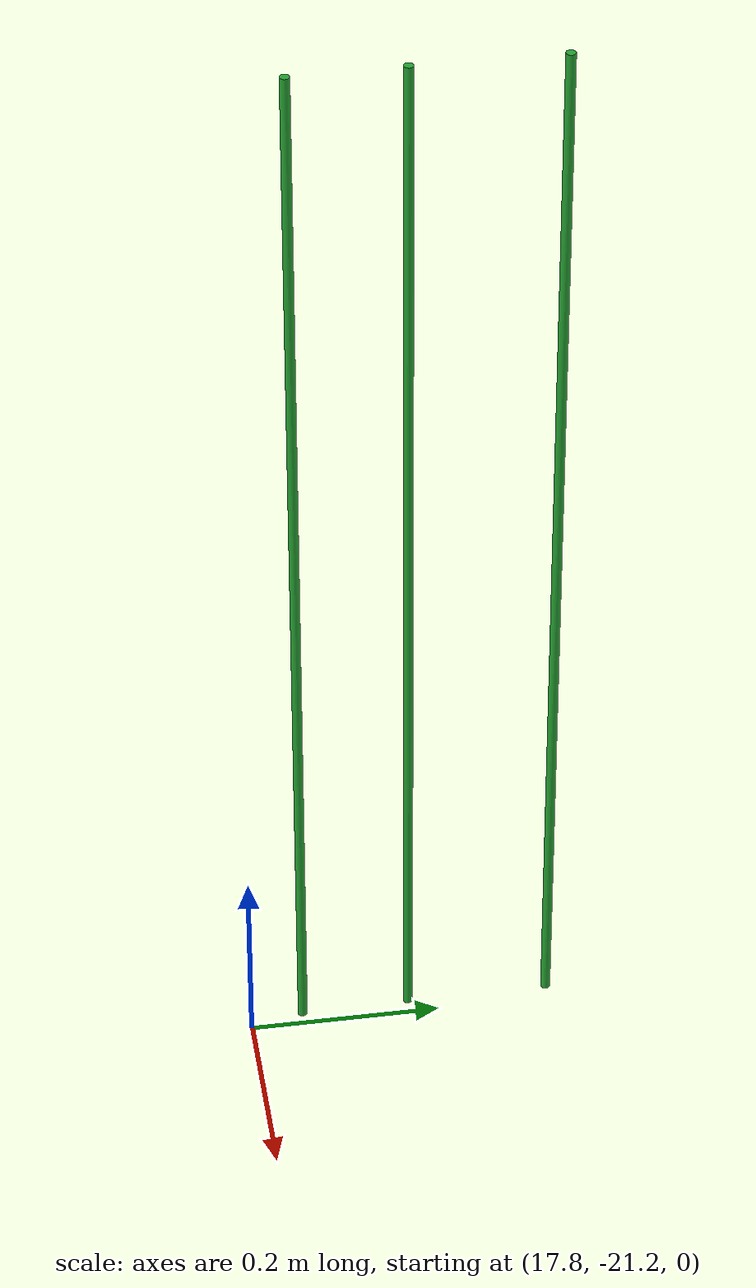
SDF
<sdf version="1.6">
 <world name="default">
  <model name="pole_27_clone_clone_205">
   <link name="link">
    <inertial>
     <mass>1</mass>
     <inertia><ixx>1</ixx><ixy>0</ixy><ixz>0</ixz><iyy>1</iyy><iyz>0</iyz><izz>1</izz></inertia>
    </inertial>
    <visual name="visual">
     <geometry><cylinder><length>1.15</length><radius>0.005</radius></cylinder></geometry>
     <material>
      <script><uri>file://media/materials/scripts/gazebo.material</uri><name>Gazebo/Green</name></script>
      <shader type="vertex"><normal_map>__default__</normal_map></shader>
      <emissive>0 0.1 0 1</emissive>
      <specular>0 0.01 0 1</specular>
      <ambient>0 0.5 0 1</ambient>
      <diffuse>0 0.05 0 1</diffuse>
     </material>
    </visual>
    <collision name="collision">
     <geometry><cylinder><radius>0.005</radius><length>1.15</length></cylinder></geometry>
     <surface>
      <friction>
       <ode><mu>1</mu><mu2>1</mu2><fdir1>0 0 0</fdir1><slip1>0</slip1><slip2>0</slip2></ode>
       <torsional>
        <coefficient>1</coefficient>
        <patch_radius>0</patch_radius>
        <surface_radius>0</surface_radius>
        <use_patch_radius>1</use_patch_radius>
        <ode><slip>0</slip></ode>
       </torsional>
      </friction>
      <bounce><restitution_coefficient>0</restitution_coefficient><threshold>1e+06</threshold></bounce>
      <contact>
       <collide_without_contact>0</collide_without_contact>
       <collide_without_contact_bitmask>1</collide_without_contact_bitmask>
       <collide_bitmask>1</collide_bitmask>
       <ode>
        <soft_cfm>0</soft_cfm>
        <soft_erp>0.2</soft_erp>
        <kp>1e+13</kp>
        <kd>1</kd>
        <max_vel>0.01</max_vel>
        <min_depth>0</min_depth>
       </ode>
       <bullet>
        <split_impulse>1</split_impulse>
        <split_impulse_penetration_threshold>-0.01</split_impulse_penetration_threshold>
        <soft_cfm>0</soft_cfm>
        <soft_erp>0.2</soft_erp>
        <kp>1e+13</kp>
        <kd>1</kd>
       </bullet>
      </contact>
     </surface>
    </collision>
   </link>
   <static>1</static>
   <pose>17.7816 -21.0299 0.575 0 -0 0</pose>
  </model>
  <model name="pole_27_clone_clone_207">
   <link name="link">
    <inertial>
     <mass>1</mass>
     <inertia><ixx>1</ixx><ixy>0</ixy><ixz>0</ixz><iyy>1</iyy><iyz>0</iyz><izz>1</izz></inertia>
    </inertial>
    <visual name="visual">
     <geometry><cylinder><length>1.15</length><radius>0.005</radius></cylinder></geometry>
     <material>
      <script><uri>file://media/materials/scripts/gazebo.material</uri><name>Gazebo/Green</name></script>
      <shader type="vertex"><normal_map>__default__</normal_map></shader>
      <emissive>0 0.1 0 1</emissive>
      <specular>0 0.01 0 1</specular>
      <ambient>0 0.5 0 1</ambient>
      <diffuse>0 0.05 0 1</diffuse>
     </material>
    </visual>
    <collision name="collision">
     <geometry><cylinder><radius>0.005</radius><length>1.15</length></cylinder></geometry>
     <surface>
      <friction>
       <ode><mu>1</mu><mu2>1</mu2><fdir1>0 0 0</fdir1><slip1>0</slip1><slip2>0</slip2></ode>
       <torsional>
        <coefficient>1</coefficient>
        <patch_radius>0</patch_radius>
        <surface_radius>0</surface_radius>
        <use_patch_radius>1</use_patch_radius>
        <ode><slip>0</slip></ode>
       </torsional>
      </friction>
      <bounce><restitution_coefficient>0</restitution_coefficient><threshold>1e+06</threshold></bounce>
      <contact>
       <collide_without_contact>0</collide_without_contact>
       <collide_without_contact_bitmask>1</collide_without_contact_bitmask>
       <collide_bitmask>1</collide_bitmask>
       <ode>
        <soft_cfm>0</soft_cfm>
        <soft_erp>0.2</soft_erp>
        <kp>1e+13</kp>
        <kd>1</kd>
        <max_vel>0.01</max_vel>
        <min_depth>0</min_depth>
       </ode>
       <bullet>
        <split_impulse>1</split_impulse>
        <split_impulse_penetration_threshold>-0.01</split_impulse_penetration_threshold>
        <soft_cfm>0</soft_cfm>
        <soft_erp>0.2</soft_erp>
        <kp>1e+13</kp>
        <kd>1</kd>
       </bullet>
      </contact>
     </surface>
    </collision>
   </link>
   <static>1</static>
   <pose>17.7845 -21.1438 0.575 0 -0 0</pose>
  </model>
  <model name="pole_27_clone_clone_209">
   <link name="link">
    <inertial>
     <mass>1</mass>
     <inertia><ixx>1</ixx><ixy>0</ixy><ixz>0</ixz><iyy>1</iyy><iyz>0</iyz><izz>1</izz></inertia>
    </inertial>
    <visual name="visual">
     <geometry><cylinder><length>1.15</length><radius>0.005</radius></cylinder></geometry>
     <material>
      <script><uri>file://media/materials/scripts/gazebo.material</uri><name>Gazebo/Green</name></script>
      <shader type="vertex"><normal_map>__default__</normal_map></shader>
      <emissive>0 0.1 0 1</emissive>
      <specular>0 0.01 0 1</specular>
      <ambient>0 0.5 0 1</ambient>
      <diffuse>0 0.05 0 1</diffuse>
     </material>
    </visual>
    <collision name="collision">
     <geometry><cylinder><radius>0.005</radius><length>1.15</length></cylinder></geometry>
     <surface>
      <friction>
       <ode><mu>1</mu><mu2>1</mu2><fdir1>0 0 0</fdir1><slip1>0</slip1><slip2>0</slip2></ode>
       <torsional>
        <coefficient>1</coefficient>
        <patch_radius>0</patch_radius>
        <surface_radius>0</surface_radius>
        <use_patch_radius>1</use_patch_radius>
        <ode><slip>0</slip></ode>
       </torsional>
      </friction>
      <bounce><restitution_coefficient>0</restitution_coefficient><threshold>1e+06</threshold></bounce>
      <contact>
       <collide_without_contact>0</collide_without_contact>
       <collide_without_contact_bitmask>1</collide_without_contact_bitmask>
       <collide_bitmask>1</collide_bitmask>
       <ode>
        <soft_cfm>0</soft_cfm>
        <soft_erp>0.2</soft_erp>
        <kp>1e+13</kp>
        <kd>1</kd>
        <max_vel>0.01</max_vel>
        <min_depth>0</min_depth>
       </ode>
       <bullet>
        <split_impulse>1</split_impulse>
        <split_impulse_penetration_threshold>-0.01</split_impulse_penetration_threshold>
        <soft_cfm>0</soft_cfm>
        <soft_erp>0.2</soft_erp>
        <kp>1e+13</kp>
        <kd>1</kd>
       </bullet>
      </contact>
     </surface>
    </collision>
   </link>
   <static>1</static>
   <pose>17.7815 -20.8804 0.575 0 -0 0</pose>
  </model>
 </world>
</sdf>
